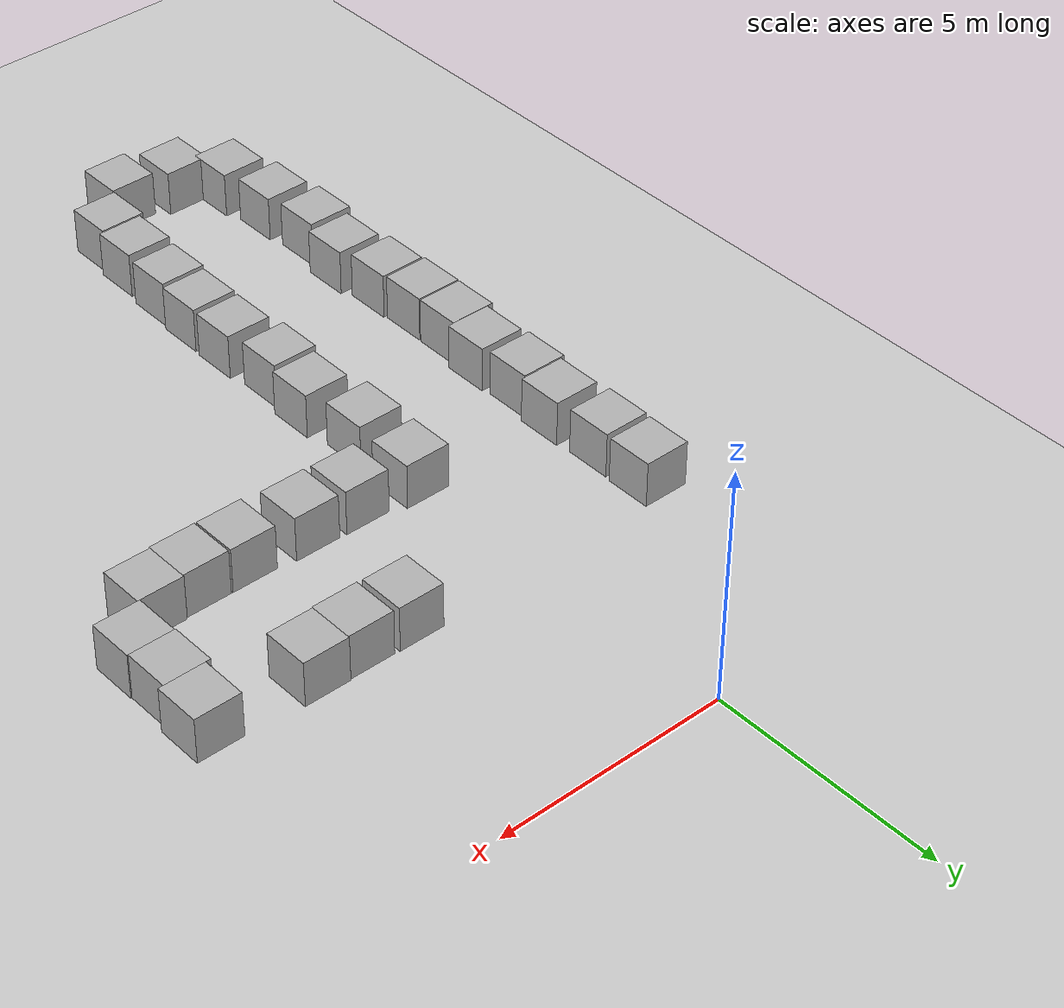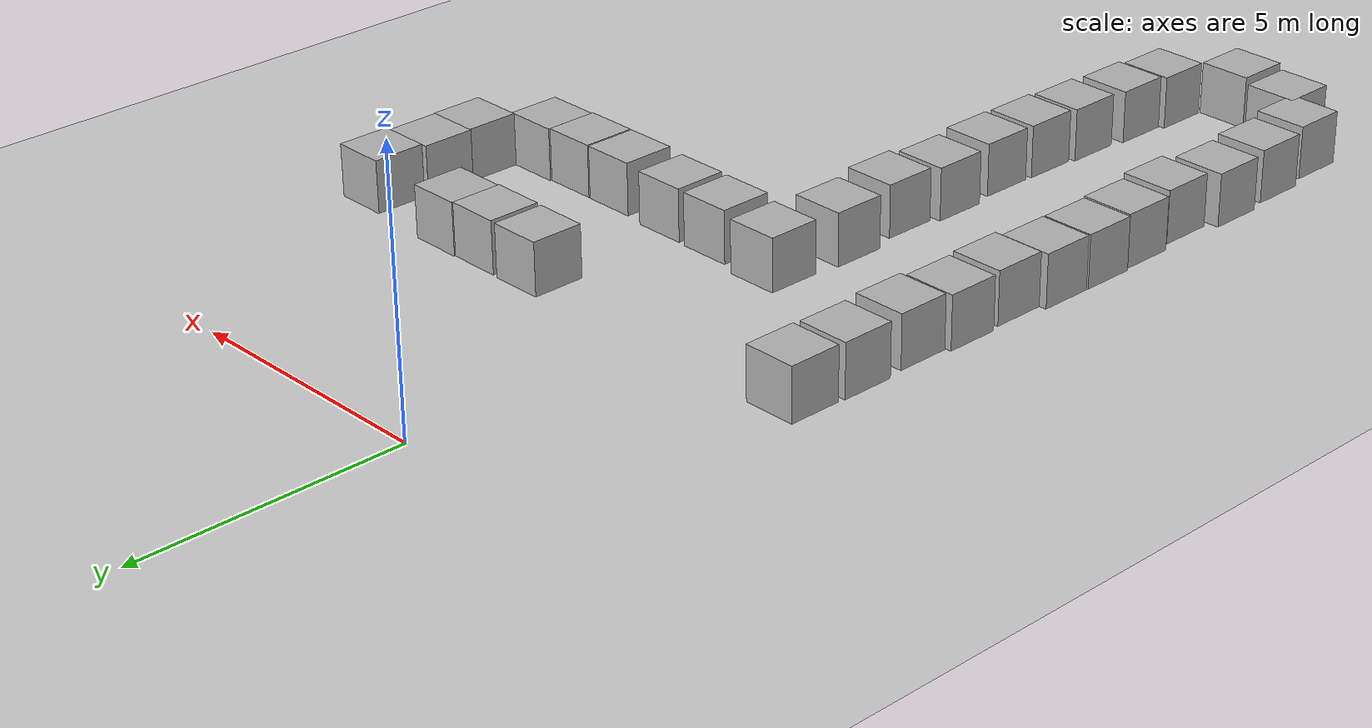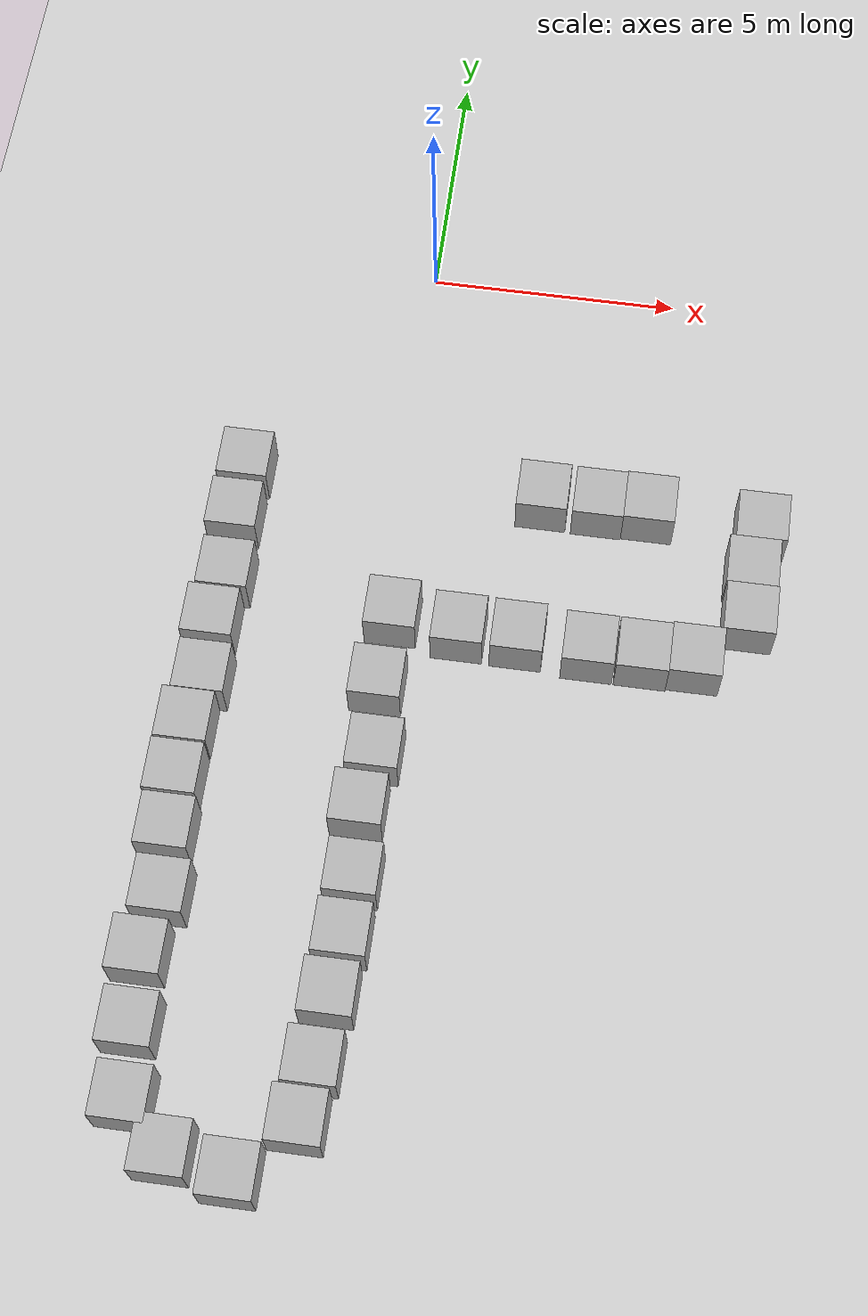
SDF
<sdf version="1.10">
 <world name="empty">
  <model name="ground_plane">
   <static>true</static>
   <link name="link">
    <collision name="collision">
     <geometry><plane><normal>0 0 1</normal><size>100 100</size></plane></geometry>
    </collision>
    <visual name="visual">
     <geometry><plane><normal>0 0 1</normal><size>100 100</size></plane></geometry>
     <material>
      <ambient>0.800000012 0.800000012 0.800000012 1</ambient>
      <diffuse>0.800000012 0.800000012 0.800000012 1</diffuse>
      <specular>0.800000012 0.800000012 0.800000012 1</specular>
     </material>
    </visual>
    <inertial>
     <mass>1</mass>
     <inertia><ixx>1</ixx><ixy>0</ixy><ixz>0</ixz><iyy>1</iyy><iyz>0</iyz><izz>1</izz></inertia>
    </inertial>
   </link>
  </model>
  <model name="box_3">
   <pose>2.837014502640967 -5.0088500809708263 0.49999999980497606 1.0048033485058014e-21 -2.4640853465547739e-21 -3.9210766489770922e-22</pose>
   <link name="box_link">
    <inertial>
     <inertia><ixx>0.16666</ixx><ixy>0</ixy><ixz>0</ixz><iyy>0.16666</iyy><iyz>0</iyz><izz>0.16666</izz></inertia>
     <mass>1</mass>
    </inertial>
    <collision name="box_collision"><geometry><box><size>1 1 1</size></box></geometry></collision>
    <visual name="box_visual">
     <geometry><box><size>1 1 1</size></box></geometry>
     <material>
      <ambient>0.300000012 0.300000012 0.300000012 1</ambient>
      <diffuse>0.699999988 0.699999988 0.699999988 1</diffuse>
      <specular>1 1 1 1</specular>
     </material>
    </visual>
   </link>
   <static>false</static>
  </model>
  <model name="box_4">
   <pose>3.9474809183531687 -5.0258722953265274 0.49999998529462536 3.7104125958135577e-09 -2.3067699219829278e-08 -3.0332183811339351e-07</pose>
   <link name="box_link">
    <inertial>
     <inertia><ixx>0.16666</ixx><ixy>0</ixy><ixz>0</ixz><iyy>0.16666</iyy><iyz>0</iyz><izz>0.16666</izz></inertia>
     <mass>1</mass>
    </inertial>
    <collision name="box_collision"><geometry><box><size>1 1 1</size></box></geometry></collision>
    <visual name="box_visual">
     <geometry><box><size>1 1 1</size></box></geometry>
     <material>
      <ambient>0.300000012 0.300000012 0.300000012 1</ambient>
      <diffuse>0.699999988 0.699999988 0.699999988 1</diffuse>
      <specular>1 1 1 1</specular>
     </material>
    </visual>
   </link>
   <static>false</static>
  </model>
  <model name="box_5">
   <pose>4.9474804862699848 -5.0026656346293397 0.49999998981609922 4.954454058698816e-11 1.2600079243989959e-08 -2.7732852854713343e-07</pose>
   <link name="box_link">
    <inertial>
     <inertia><ixx>0.16666</ixx><ixy>0</ixy><ixz>0</ixz><iyy>0.16666</iyy><iyz>0</iyz><izz>0.16666</izz></inertia>
     <mass>1</mass>
    </inertial>
    <collision name="box_collision"><geometry><box><size>1 1 1</size></box></geometry></collision>
    <visual name="box_visual">
     <geometry><box><size>1 1 1</size></box></geometry>
     <material>
      <ambient>0.300000012 0.300000012 0.300000012 1</ambient>
      <diffuse>0.699999988 0.699999988 0.699999988 1</diffuse>
      <specular>1 1 1 1</specular>
     </material>
    </visual>
   </link>
   <static>false</static>
  </model>
  <model name="box_10">
   <pose>7.157668728078316 -5.1148497796605223 0.49999999019985342 -5.0212384153694259e-09 6.604406486970901e-13 -1.5803644963507751e-06</pose>
   <link name="box_link">
    <inertial>
     <inertia><ixx>0.16666</ixx><ixy>0</ixy><ixz>0</ixz><iyy>0.16666</iyy><iyz>0</iyz><izz>0.16666</izz></inertia>
     <mass>1</mass>
    </inertial>
    <collision name="box_collision"><geometry><box><size>1 1 1</size></box></geometry></collision>
    <visual name="box_visual">
     <geometry><box><size>1 1 1</size></box></geometry>
     <material>
      <ambient>0.300000012 0.300000012 0.300000012 1</ambient>
      <diffuse>0.699999988 0.699999988 0.699999988 1</diffuse>
      <specular>1 1 1 1</specular>
     </material>
    </visual>
   </link>
   <static>false</static>
  </model>
  <model name="box_11">
   <pose>7.047095793072141 -6.1148499299846941 0.49999999020009811 -1.9531817952698124e-08 1.6817889764058319e-12 -1.0062951630002682e-06</pose>
   <link name="box_link">
    <inertial>
     <inertia><ixx>0.16666</ixx><ixy>0</ixy><ixz>0</ixz><iyy>0.16666</iyy><iyz>0</iyz><izz>0.16666</izz></inertia>
     <mass>1</mass>
    </inertial>
    <collision name="box_collision"><geometry><box><size>1 1 1</size></box></geometry></collision>
    <visual name="box_visual">
     <geometry><box><size>1 1 1</size></box></geometry>
     <material>
      <ambient>0.300000012 0.300000012 0.300000012 1</ambient>
      <diffuse>0.699999988 0.699999988 0.699999988 1</diffuse>
      <specular>1 1 1 1</specular>
     </material>
    </visual>
   </link>
   <static>false</static>
  </model>
  <model name="box_12">
   <pose>7.0684524366307429 -7.1148490083341205 0.4999999901984945 1.6116309610574025e-08 7.3847904851729951e-12 -1.7716566142746962e-06</pose>
   <link name="box_link">
    <inertial>
     <inertia><ixx>0.16666</ixx><ixy>0</ixy><ixz>0</ixz><iyy>0.16666</iyy><iyz>0</iyz><izz>0.16666</izz></inertia>
     <mass>1</mass>
    </inertial>
    <collision name="box_collision"><geometry><box><size>1 1 1</size></box></geometry></collision>
    <visual name="box_visual">
     <geometry><box><size>1 1 1</size></box></geometry>
     <material>
      <ambient>0.300000012 0.300000012 0.300000012 1</ambient>
      <diffuse>0.699999988 0.699999988 0.699999988 1</diffuse>
      <specular>1 1 1 1</specular>
     </material>
    </visual>
   </link>
   <static>false</static>
  </model>
  <model name="box_13">
   <pose>6.1244116256161005 -8.1146625602707871 0.49999999022078773 1.531830688740307e-08 4.4068036596287947e-09 -0.00041748080535213288</pose>
   <link name="box_link">
    <inertial>
     <inertia><ixx>0.16666</ixx><ixy>0</ixy><ixz>0</ixz><iyy>0.16666</iyy><iyz>0</iyz><izz>0.16666</izz></inertia>
     <mass>1</mass>
    </inertial>
    <collision name="box_collision"><geometry><box><size>1 1 1</size></box></geometry></collision>
    <visual name="box_visual">
     <geometry><box><size>1 1 1</size></box></geometry>
     <material>
      <ambient>0.300000012 0.300000012 0.300000012 1</ambient>
      <diffuse>0.699999988 0.699999988 0.699999988 1</diffuse>
      <specular>1 1 1 1</specular>
     </material>
    </visual>
   </link>
   <static>false</static>
  </model>
  <model name="box_14">
   <pose>5.1242039913273256 -8.1461779064023929 0.49999999019961472 6.9998158500655817e-13 -4.34922201743193e-09 -2.2626298584421248e-06</pose>
   <link name="box_link">
    <inertial>
     <inertia><ixx>0.16666</ixx><ixy>0</ixy><ixz>0</ixz><iyy>0.16666</iyy><iyz>0</iyz><izz>0.16666</izz></inertia>
     <mass>1</mass>
    </inertial>
    <collision name="box_collision"><geometry><box><size>1 1 1</size></box></geometry></collision>
    <visual name="box_visual">
     <geometry><box><size>1 1 1</size></box></geometry>
     <material>
      <ambient>0.300000012 0.300000012 0.300000012 1</ambient>
      <diffuse>0.699999988 0.699999988 0.699999988 1</diffuse>
      <specular>1 1 1 1</specular>
     </material>
    </visual>
   </link>
   <static>false</static>
  </model>
  <model name="box_15">
   <pose>4.0904389897101998 -8.1420347813360383 0.49999999980497606 1.0048033485058014e-21 -2.4640853465547739e-21 -3.9210766489770922e-22</pose>
   <link name="box_link">
    <inertial>
     <inertia><ixx>0.16666</ixx><ixy>0</ixy><ixz>0</ixz><iyy>0.16666</iyy><iyz>0</iyz><izz>0.16666</izz></inertia>
     <mass>1</mass>
    </inertial>
    <collision name="box_collision"><geometry><box><size>1 1 1</size></box></geometry></collision>
    <visual name="box_visual">
     <geometry><box><size>1 1 1</size></box></geometry>
     <material>
      <ambient>0.300000012 0.300000012 0.300000012 1</ambient>
      <diffuse>0.699999988 0.699999988 0.699999988 1</diffuse>
      <specular>1 1 1 1</specular>
     </material>
    </visual>
   </link>
   <static>false</static>
  </model>
  <model name="box_34">
   <pose>-3.1076568110748073 -5.0616794321280825 0.49999999990199806 6.2287739151293738e-22 9.3279666454713669e-22 -3.6315533669320137e-22</pose>
   <link name="box_link">
    <inertial>
     <inertia><ixx>0.16666</ixx><ixy>0</ixy><ixz>0</ixz><iyy>0.16666</iyy><iyz>0</iyz><izz>0.16666</izz></inertia>
     <mass>1</mass>
    </inertial>
    <collision name="box_collision"><geometry><box><size>1 1 1</size></box></geometry></collision>
    <visual name="box_visual">
     <geometry><box><size>1 1 1</size></box></geometry>
     <material>
      <ambient>0.300000012 0.300000012 0.300000012 1</ambient>
      <diffuse>0.699999988 0.699999988 0.699999988 1</diffuse>
      <specular>1 1 1 1</specular>
     </material>
    </visual>
   </link>
   <static>false</static>
  </model>
  <model name="box_35">
   <pose>0.24766042885596473 -7.8956005604393997 0.49999999990199806 6.2287739151293738e-22 9.3279666454713669e-22 -3.6315533669320137e-22</pose>
   <link name="box_link">
    <inertial>
     <inertia><ixx>0.16666</ixx><ixy>0</ixy><ixz>0</ixz><iyy>0.16666</iyy><iyz>0</iyz><izz>0.16666</izz></inertia>
     <mass>1</mass>
    </inertial>
    <collision name="box_collision"><geometry><box><size>1 1 1</size></box></geometry></collision>
    <visual name="box_visual">
     <geometry><box><size>1 1 1</size></box></geometry>
     <material>
      <ambient>0.300000012 0.300000012 0.300000012 1</ambient>
      <diffuse>0.699999988 0.699999988 0.699999988 1</diffuse>
      <specular>1 1 1 1</specular>
     </material>
    </visual>
   </link>
   <static>false</static>
  </model>
  <model name="box_36">
   <pose>0.33365914200646607 -10.742962308740333 0.49999999990199806 6.2287739151293738e-22 9.3279666454713669e-22 -3.6315533669320137e-22</pose>
   <link name="box_link">
    <inertial>
     <inertia><ixx>0.16666</ixx><ixy>0</ixy><ixz>0</ixz><iyy>0.16666</iyy><iyz>0</iyz><izz>0.16666</izz></inertia>
     <mass>1</mass>
    </inertial>
    <collision name="box_collision"><geometry><box><size>1 1 1</size></box></geometry></collision>
    <visual name="box_visual">
     <geometry><box><size>1 1 1</size></box></geometry>
     <material>
      <ambient>0.300000012 0.300000012 0.300000012 1</ambient>
      <diffuse>0.699999988 0.699999988 0.699999988 1</diffuse>
      <specular>1 1 1 1</specular>
     </material>
    </visual>
   </link>
   <static>false</static>
  </model>
  <model name="box_37">
   <pose>2.7086985949157238 -8.0697046981979508 0.49999999990199806 6.2287739151293738e-22 9.3279666454713669e-22 -3.6315533669320137e-22</pose>
   <link name="box_link">
    <inertial>
     <inertia><ixx>0.16666</ixx><ixy>0</ixy><ixz>0</ixz><iyy>0.16666</iyy><iyz>0</iyz><izz>0.16666</izz></inertia>
     <mass>1</mass>
    </inertial>
    <collision name="box_collision"><geometry><box><size>1 1 1</size></box></geometry></collision>
    <visual name="box_visual">
     <geometry><box><size>1 1 1</size></box></geometry>
     <material>
      <ambient>0.300000012 0.300000012 0.300000012 1</ambient>
      <diffuse>0.699999988 0.699999988 0.699999988 1</diffuse>
      <specular>1 1 1 1</specular>
     </material>
    </visual>
   </link>
   <static>false</static>
  </model>
  <model name="box_38">
   <pose>1.558771340348704 -8.0505541174595496 0.49999999990199806 6.2287739151293738e-22 9.3279666454713669e-22 -3.6315533669320137e-22</pose>
   <link name="box_link">
    <inertial>
     <inertia><ixx>0.16666</ixx><ixy>0</ixy><ixz>0</ixz><iyy>0.16666</iyy><iyz>0</iyz><izz>0.16666</izz></inertia>
     <mass>1</mass>
    </inertial>
    <collision name="box_collision"><geometry><box><size>1 1 1</size></box></geometry></collision>
    <visual name="box_visual">
     <geometry><box><size>1 1 1</size></box></geometry>
     <material>
      <ambient>0.300000012 0.300000012 0.300000012 1</ambient>
      <diffuse>0.699999988 0.699999988 0.699999988 1</diffuse>
      <specular>1 1 1 1</specular>
     </material>
    </visual>
   </link>
   <static>false</static>
  </model>
  <model name="box_39">
   <pose>0.16998330059342326 -9.3416979127802406 0.49999999990199806 6.2287739151293738e-22 9.3279666454713669e-22 -3.6315533669320137e-22</pose>
   <link name="box_link">
    <inertial>
     <inertia><ixx>0.16666</ixx><ixy>0</ixy><ixz>0</ixz><iyy>0.16666</iyy><iyz>0</iyz><izz>0.16666</izz></inertia>
     <mass>1</mass>
    </inertial>
    <collision name="box_collision"><geometry><box><size>1 1 1</size></box></geometry></collision>
    <visual name="box_visual">
     <geometry><box><size>1 1 1</size></box></geometry>
     <material>
      <ambient>0.300000012 0.300000012 0.300000012 1</ambient>
      <diffuse>0.699999988 0.699999988 0.699999988 1</diffuse>
      <specular>1 1 1 1</specular>
     </material>
    </visual>
   </link>
   <static>false</static>
  </model>
  <model name="box_40">
   <pose>0.20167570992643746 -11.856709932262275 0.49999999990199806 6.2287739151293738e-22 9.3279666454713669e-22 -3.6315533669320137e-22</pose>
   <link name="box_link">
    <inertial>
     <inertia><ixx>0.16666</ixx><ixy>0</ixy><ixz>0</ixz><iyy>0.16666</iyy><iyz>0</iyz><izz>0.16666</izz></inertia>
     <mass>1</mass>
    </inertial>
    <collision name="box_collision"><geometry><box><size>1 1 1</size></box></geometry></collision>
    <visual name="box_visual">
     <geometry><box><size>1 1 1</size></box></geometry>
     <material>
      <ambient>0.300000012 0.300000012 0.300000012 1</ambient>
      <diffuse>0.699999988 0.699999988 0.699999988 1</diffuse>
      <specular>1 1 1 1</specular>
     </material>
    </visual>
   </link>
   <static>false</static>
  </model>
  <model name="box_41">
   <pose>-3.1336107339829322 -6.1803619670891967 0.49999999990199806 6.2287739151293738e-22 9.3279666454713669e-22 -3.6315533669320137e-22</pose>
   <link name="box_link">
    <inertial>
     <inertia><ixx>0.16666</ixx><ixy>0</ixy><ixz>0</ixz><iyy>0.16666</iyy><iyz>0</iyz><izz>0.16666</izz></inertia>
     <mass>1</mass>
    </inertial>
    <collision name="box_collision"><geometry><box><size>1 1 1</size></box></geometry></collision>
    <visual name="box_visual">
     <geometry><box><size>1 1 1</size></box></geometry>
     <material>
      <ambient>0.300000012 0.300000012 0.300000012 1</ambient>
      <diffuse>0.699999988 0.699999988 0.699999988 1</diffuse>
      <specular>1 1 1 1</specular>
     </material>
    </visual>
   </link>
   <static>false</static>
  </model>
  <model name="box_42">
   <pose>-3.0745684316036508 -7.4783734068822403 0.49999999990199806 6.2287739151293738e-22 9.3279666454713669e-22 -3.6315533669320137e-22</pose>
   <link name="box_link">
    <inertial>
     <inertia><ixx>0.16666</ixx><ixy>0</ixy><ixz>0</ixz><iyy>0.16666</iyy><iyz>0</iyz><izz>0.16666</izz></inertia>
     <mass>1</mass>
    </inertial>
    <collision name="box_collision"><geometry><box><size>1 1 1</size></box></geometry></collision>
    <visual name="box_visual">
     <geometry><box><size>1 1 1</size></box></geometry>
     <material>
      <ambient>0.300000012 0.300000012 0.300000012 1</ambient>
      <diffuse>0.699999988 0.699999988 0.699999988 1</diffuse>
      <specular>1 1 1 1</specular>
     </material>
    </visual>
   </link>
   <static>false</static>
  </model>
  <model name="box_43">
   <pose>-3.1798129065131473 -8.5104171928360426 0.49999999990199806 6.2287739151293738e-22 9.3279666454713669e-22 -3.6315533669320137e-22</pose>
   <link name="box_link">
    <inertial>
     <inertia><ixx>0.16666</ixx><ixy>0</ixy><ixz>0</ixz><iyy>0.16666</iyy><iyz>0</iyz><izz>0.16666</izz></inertia>
     <mass>1</mass>
    </inertial>
    <collision name="box_collision"><geometry><box><size>1 1 1</size></box></geometry></collision>
    <visual name="box_visual">
     <geometry><box><size>1 1 1</size></box></geometry>
     <material>
      <ambient>0.300000012 0.300000012 0.300000012 1</ambient>
      <diffuse>0.699999988 0.699999988 0.699999988 1</diffuse>
      <specular>1 1 1 1</specular>
     </material>
    </visual>
   </link>
   <static>false</static>
  </model>
  <model name="box_47">
   <pose>-3.1241412935287531 -9.6702494824258434 0.49999999990199806 6.2287739151293738e-22 9.3279666454713669e-22 -3.6315533669320137e-22</pose>
   <link name="box_link">
    <inertial>
     <inertia><ixx>0.16666</ixx><ixy>0</ixy><ixz>0</ixz><iyy>0.16666</iyy><iyz>0</iyz><izz>0.16666</izz></inertia>
     <mass>1</mass>
    </inertial>
    <collision name="box_collision"><geometry><box><size>1 1 1</size></box></geometry></collision>
    <visual name="box_visual">
     <geometry><box><size>1 1 1</size></box></geometry>
     <material>
      <ambient>0.300000012 0.300000012 0.300000012 1</ambient>
      <diffuse>0.699999988 0.699999988 0.699999988 1</diffuse>
      <specular>1 1 1 1</specular>
     </material>
    </visual>
   </link>
   <static>false</static>
  </model>
  <model name="box_48">
   <pose>0.3064701161037382 -13.175909224039579 0.49999999990199806 6.2287739151293738e-22 9.3279666454713669e-22 -3.6315533669320137e-22</pose>
   <link name="box_link">
    <inertial>
     <inertia><ixx>0.16666</ixx><ixy>0</ixy><ixz>0</ixz><iyy>0.16666</iyy><iyz>0</iyz><izz>0.16666</izz></inertia>
     <mass>1</mass>
    </inertial>
    <collision name="box_collision"><geometry><box><size>1 1 1</size></box></geometry></collision>
    <visual name="box_visual">
     <geometry><box><size>1 1 1</size></box></geometry>
     <material>
      <ambient>0.300000012 0.300000012 0.300000012 1</ambient>
      <diffuse>0.699999988 0.699999988 0.699999988 1</diffuse>
      <specular>1 1 1 1</specular>
     </material>
    </visual>
   </link>
   <static>false</static>
  </model>
  <model name="box_49">
   <pose>0.28632317972899823 -14.305059618626277 0.49999999990199806 6.2287739151293738e-22 9.3279666454713669e-22 -3.6315533669320137e-22</pose>
   <link name="box_link">
    <inertial>
     <inertia><ixx>0.16666</ixx><ixy>0</ixy><ixz>0</ixz><iyy>0.16666</iyy><iyz>0</iyz><izz>0.16666</izz></inertia>
     <mass>1</mass>
    </inertial>
    <collision name="box_collision"><geometry><box><size>1 1 1</size></box></geometry></collision>
    <visual name="box_visual">
     <geometry><box><size>1 1 1</size></box></geometry>
     <material>
      <ambient>0.300000012 0.300000012 0.300000012 1</ambient>
      <diffuse>0.699999988 0.699999988 0.699999988 1</diffuse>
      <specular>1 1 1 1</specular>
     </material>
    </visual>
   </link>
   <static>false</static>
  </model>
  <model name="box_50">
   <pose>-3.2648109644853851 -10.678871576885253 0.49999999990199806 6.2287739151293738e-22 9.3279666454713669e-22 -3.6315533669320137e-22</pose>
   <link name="box_link">
    <inertial>
     <inertia><ixx>0.16666</ixx><ixy>0</ixy><ixz>0</ixz><iyy>0.16666</iyy><iyz>0</iyz><izz>0.16666</izz></inertia>
     <mass>1</mass>
    </inertial>
    <collision name="box_collision"><geometry><box><size>1 1 1</size></box></geometry></collision>
    <visual name="box_visual">
     <geometry><box><size>1 1 1</size></box></geometry>
     <material>
      <ambient>0.300000012 0.300000012 0.300000012 1</ambient>
      <diffuse>0.699999988 0.699999988 0.699999988 1</diffuse>
      <specular>1 1 1 1</specular>
     </material>
    </visual>
   </link>
   <static>false</static>
  </model>
  <model name="box_51">
   <pose>-3.2716518092180955 -11.713076724504202 0.49999999990199806 6.2287739151293738e-22 9.3279666454713669e-22 -3.6315533669320137e-22</pose>
   <link name="box_link">
    <inertial>
     <inertia><ixx>0.16666</ixx><ixy>0</ixy><ixz>0</ixz><iyy>0.16666</iyy><iyz>0</iyz><izz>0.16666</izz></inertia>
     <mass>1</mass>
    </inertial>
    <collision name="box_collision"><geometry><box><size>1 1 1</size></box></geometry></collision>
    <visual name="box_visual">
     <geometry><box><size>1 1 1</size></box></geometry>
     <material>
      <ambient>0.300000012 0.300000012 0.300000012 1</ambient>
      <diffuse>0.699999988 0.699999988 0.699999988 1</diffuse>
      <specular>1 1 1 1</specular>
     </material>
    </visual>
   </link>
   <static>false</static>
  </model>
  <model name="box_52">
   <pose>-3.2266279326353011 -12.763618421682496 0.49999999990199806 6.2287739151293738e-22 9.3279666454713669e-22 -3.6315533669320137e-22</pose>
   <link name="box_link">
    <inertial>
     <inertia><ixx>0.16666</ixx><ixy>0</ixy><ixz>0</ixz><iyy>0.16666</iyy><iyz>0</iyz><izz>0.16666</izz></inertia>
     <mass>1</mass>
    </inertial>
    <collision name="box_collision"><geometry><box><size>1 1 1</size></box></geometry></collision>
    <visual name="box_visual">
     <geometry><box><size>1 1 1</size></box></geometry>
     <material>
      <ambient>0.300000012 0.300000012 0.300000012 1</ambient>
      <diffuse>0.699999988 0.699999988 0.699999988 1</diffuse>
      <specular>1 1 1 1</specular>
     </material>
    </visual>
   </link>
   <static>false</static>
  </model>
  <model name="box_53">
   <pose>-3.0903234545750258 -13.950169347103079 0.49999999990199806 6.2287739151293738e-22 9.3279666454713669e-22 -3.6315533669320137e-22</pose>
   <link name="box_link">
    <inertial>
     <inertia><ixx>0.16666</ixx><ixy>0</ixy><ixz>0</ixz><iyy>0.16666</iyy><iyz>0</iyz><izz>0.16666</izz></inertia>
     <mass>1</mass>
    </inertial>
    <collision name="box_collision"><geometry><box><size>1 1 1</size></box></geometry></collision>
    <visual name="box_visual">
     <geometry><box><size>1 1 1</size></box></geometry>
     <material>
      <ambient>0.300000012 0.300000012 0.300000012 1</ambient>
      <diffuse>0.699999988 0.699999988 0.699999988 1</diffuse>
      <specular>1 1 1 1</specular>
     </material>
    </visual>
   </link>
   <static>false</static>
  </model>
  <model name="box_54">
   <pose>0.22063131711590156 -15.400329096062753 0.49999999990199806 6.2287739151293738e-22 9.3279666454713669e-22 -3.6315533669320137e-22</pose>
   <link name="box_link">
    <inertial>
     <inertia><ixx>0.16666</ixx><ixy>0</ixy><ixz>0</ixz><iyy>0.16666</iyy><iyz>0</iyz><izz>0.16666</izz></inertia>
     <mass>1</mass>
    </inertial>
    <collision name="box_collision"><geometry><box><size>1 1 1</size></box></geometry></collision>
    <visual name="box_visual">
     <geometry><box><size>1 1 1</size></box></geometry>
     <material>
      <ambient>0.300000012 0.300000012 0.300000012 1</ambient>
      <diffuse>0.699999988 0.699999988 0.699999988 1</diffuse>
      <specular>1 1 1 1</specular>
     </material>
    </visual>
   </link>
   <static>false</static>
  </model>
  <model name="box_55">
   <pose>0.14118319913367028 -16.635102875655289 0.49999999990199806 6.2287739151293738e-22 9.3279666454713669e-22 -3.6315533669320137e-22</pose>
   <link name="box_link">
    <inertial>
     <inertia><ixx>0.16666</ixx><ixy>0</ixy><ixz>0</ixz><iyy>0.16666</iyy><iyz>0</iyz><izz>0.16666</izz></inertia>
     <mass>1</mass>
    </inertial>
    <collision name="box_collision"><geometry><box><size>1 1 1</size></box></geometry></collision>
    <visual name="box_visual">
     <geometry><box><size>1 1 1</size></box></geometry>
     <material>
      <ambient>0.300000012 0.300000012 0.300000012 1</ambient>
      <diffuse>0.699999988 0.699999988 0.699999988 1</diffuse>
      <specular>1 1 1 1</specular>
     </material>
    </visual>
   </link>
   <static>false</static>
  </model>
  <model name="box_56">
   <pose>0.036333633759717543 -17.672325024029966 0.49999999990199806 6.2287739151293738e-22 9.3279666454713669e-22 -3.6315533669320137e-22</pose>
   <link name="box_link">
    <inertial>
     <inertia><ixx>0.16666</ixx><ixy>0</ixy><ixz>0</ixz><iyy>0.16666</iyy><iyz>0</iyz><izz>0.16666</izz></inertia>
     <mass>1</mass>
    </inertial>
    <collision name="box_collision"><geometry><box><size>1 1 1</size></box></geometry></collision>
    <visual name="box_visual">
     <geometry><box><size>1 1 1</size></box></geometry>
     <material>
      <ambient>0.300000012 0.300000012 0.300000012 1</ambient>
      <diffuse>0.699999988 0.699999988 0.699999988 1</diffuse>
      <specular>1 1 1 1</specular>
     </material>
    </visual>
   </link>
   <static>false</static>
  </model>
  <model name="box_57">
   <pose>-0.9662003564200079 -18.712740968756993 0.49999999990199806 6.2287739151293738e-22 9.3279666454713669e-22 -3.6315533669320137e-22</pose>
   <link name="box_link">
    <inertial>
     <inertia><ixx>0.16666</ixx><ixy>0</ixy><ixz>0</ixz><iyy>0.16666</iyy><iyz>0</iyz><izz>0.16666</izz></inertia>
     <mass>1</mass>
    </inertial>
    <collision name="box_collision"><geometry><box><size>1 1 1</size></box></geometry></collision>
    <visual name="box_visual">
     <geometry><box><size>1 1 1</size></box></geometry>
     <material>
      <ambient>0.300000012 0.300000012 0.300000012 1</ambient>
      <diffuse>0.699999988 0.699999988 0.699999988 1</diffuse>
      <specular>1 1 1 1</specular>
     </material>
    </visual>
   </link>
   <static>false</static>
  </model>
  <model name="box_58">
   <pose>-3.277087669767937 -15.096539212073234 0.49999999990199806 6.2287739151293738e-22 9.3279666454713669e-22 -3.6315533669320137e-22</pose>
   <link name="box_link">
    <inertial>
     <inertia><ixx>0.16666</ixx><ixy>0</ixy><ixz>0</ixz><iyy>0.16666</iyy><iyz>0</iyz><izz>0.16666</izz></inertia>
     <mass>1</mass>
    </inertial>
    <collision name="box_collision"><geometry><box><size>1 1 1</size></box></geometry></collision>
    <visual name="box_visual">
     <geometry><box><size>1 1 1</size></box></geometry>
     <material>
      <ambient>0.300000012 0.300000012 0.300000012 1</ambient>
      <diffuse>0.699999988 0.699999988 0.699999988 1</diffuse>
      <specular>1 1 1 1</specular>
     </material>
    </visual>
   </link>
   <static>false</static>
  </model>
  <model name="box_59">
   <pose>-3.1816826850724342 -16.386310365574168 0.49999999990199806 6.2287739151293738e-22 9.3279666454713669e-22 -3.6315533669320137e-22</pose>
   <link name="box_link">
    <inertial>
     <inertia><ixx>0.16666</ixx><ixy>0</ixy><ixz>0</ixz><iyy>0.16666</iyy><iyz>0</iyz><izz>0.16666</izz></inertia>
     <mass>1</mass>
    </inertial>
    <collision name="box_collision"><geometry><box><size>1 1 1</size></box></geometry></collision>
    <visual name="box_visual">
     <geometry><box><size>1 1 1</size></box></geometry>
     <material>
      <ambient>0.300000012 0.300000012 0.300000012 1</ambient>
      <diffuse>0.699999988 0.699999988 0.699999988 1</diffuse>
      <specular>1 1 1 1</specular>
     </material>
    </visual>
   </link>
   <static>false</static>
  </model>
  <model name="box_60">
   <pose>-3.0350385442143826 -17.673280774408163 0.4999999901996266 -2.2938764475693482e-13 -1.9599387994278461e-08 -9.0548682005920347e-06</pose>
   <link name="box_link">
    <inertial>
     <inertia><ixx>0.16666</ixx><ixy>0</ixy><ixz>0</ixz><iyy>0.16666</iyy><iyz>0</iyz><izz>0.16666</izz></inertia>
     <mass>1</mass>
    </inertial>
    <collision name="box_collision"><geometry><box><size>1 1 1</size></box></geometry></collision>
    <visual name="box_visual">
     <geometry><box><size>1 1 1</size></box></geometry>
     <material>
      <ambient>0.300000012 0.300000012 0.300000012 1</ambient>
      <diffuse>0.699999988 0.699999988 0.699999988 1</diffuse>
      <specular>1 1 1 1</specular>
     </material>
    </visual>
   </link>
   <static>false</static>
  </model>
  <model name="box_61">
   <pose>-2.1886546604630599 -18.481234407156176 0.49999999019985442 6.8376638674236997e-13 1.9599762662337351e-08 -8.7835061627809787e-06</pose>
   <link name="box_link">
    <inertial>
     <inertia><ixx>0.16666</ixx><ixy>0</ixy><ixz>0</ixz><iyy>0.16666</iyy><iyz>0</iyz><izz>0.16666</izz></inertia>
     <mass>1</mass>
    </inertial>
    <collision name="box_collision"><geometry><box><size>1 1 1</size></box></geometry></collision>
    <visual name="box_visual">
     <geometry><box><size>1 1 1</size></box></geometry>
     <material>
      <ambient>0.300000012 0.300000012 0.300000012 1</ambient>
      <diffuse>0.699999988 0.699999988 0.699999988 1</diffuse>
      <specular>1 1 1 1</specular>
     </material>
    </visual>
   </link>
   <static>false</static>
  </model>
 </world>
</sdf>
